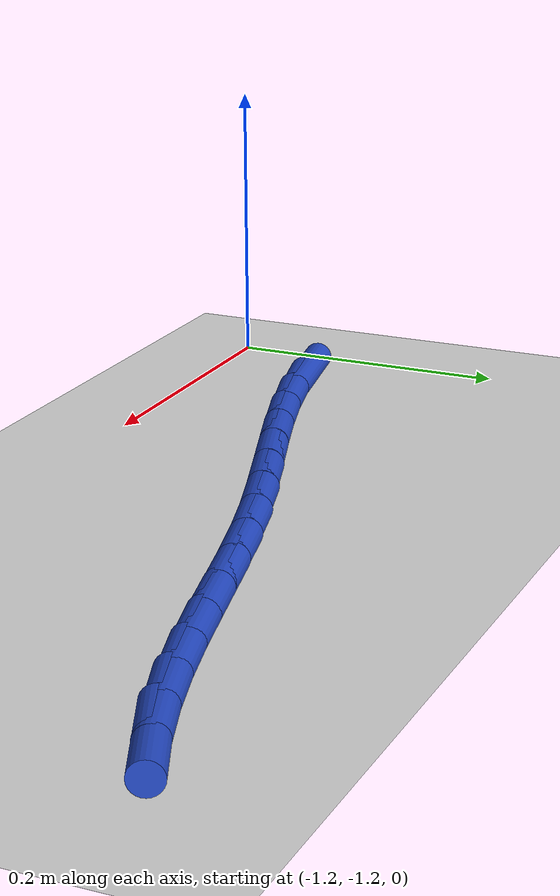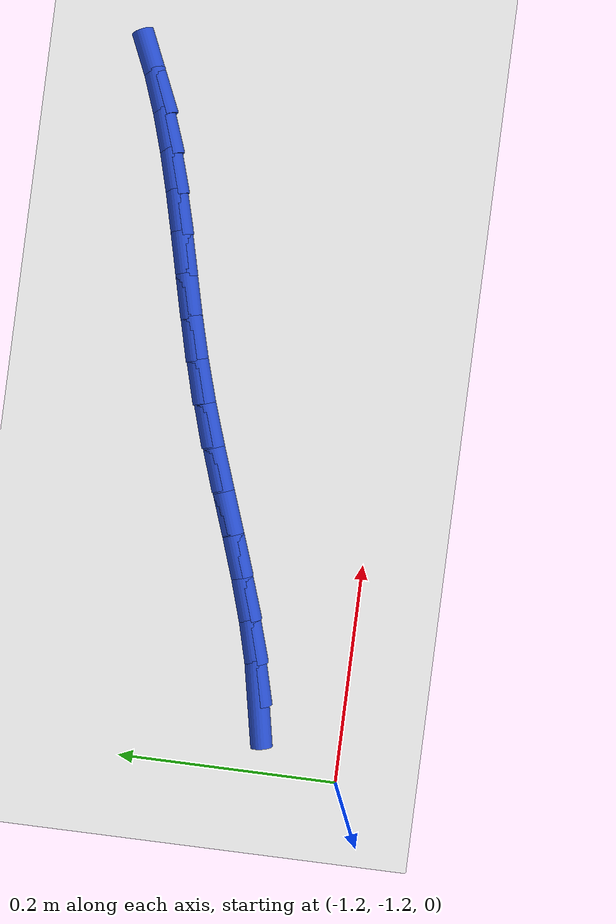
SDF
<sdf version="1.6">
 <world name="default">
  <model name="ground_plane">
   <static>1</static>
   <link name="link">
    <collision name="collision">
     <geometry><plane><normal>0 0 1</normal><size>100 100</size></plane></geometry>
     <surface><friction><ode><mu>100</mu><mu2>50</mu2></ode></friction></surface>
    </collision>
    <visual name="visual">
     <cast_shadows>0</cast_shadows>
     <geometry><plane><normal>0 0 1</normal><size>100 100</size></plane></geometry>
     <material>
      <script><uri>file://media/materials/scripts/gazebo.material</uri><name>Gazebo/WhiteGlow</name></script>
     </material>
    </visual>
   </link>
  </model>
  <model name="line">
   <link name="link_134">
    <pose>-1.1348044352318662 -1.1205781811077162 0.01 0 1.57 0.19714393108619122</pose>
    <collision name="collision">
     <geometry><cylinder><radius>0.01</radius><length>0.08</length></cylinder></geometry>
    </collision>
    <visual name="visual">
     <material>
      <script><name>Gazebo/Blue</name><uri>file://media/materials/scripts/gazebo.material</uri></script>
     </material>
     <geometry><cylinder><radius>0.01</radius><length>0.08</length></cylinder></geometry>
    </visual>
   </link>
   <link name="link_135">
    <pose>-1.0984696942742427 -1.1133207410184738 0.01 0 1.57 0.2610456912687996</pose>
    <collision name="collision">
     <geometry><cylinder><radius>0.01</radius><length>0.08</length></cylinder></geometry>
    </collision>
    <visual name="visual">
     <material>
      <script><name>Gazebo/Blue</name><uri>file://media/materials/scripts/gazebo.material</uri></script>
     </material>
     <geometry><cylinder><radius>0.01</radius><length>0.08</length></cylinder></geometry>
    </visual>
   </link>
   <link name="link_136">
    <pose>-1.061452512426125 -1.1034319138355297 0.01 0 1.57 0.3056574299178483</pose>
    <collision name="collision">
     <geometry><cylinder><radius>0.01</radius><length>0.08</length></cylinder></geometry>
    </collision>
    <visual name="visual">
     <material>
      <script><name>Gazebo/Blue</name><uri>file://media/materials/scripts/gazebo.material</uri></script>
     </material>
     <geometry><cylinder><radius>0.01</radius><length>0.08</length></cylinder></geometry>
    </visual>
   </link>
   <link name="link_137">
    <pose>-1.0238946441052819 -1.0915806799797851 0.01 0 1.57 0.33337998904044014</pose>
    <collision name="collision">
     <geometry><cylinder><radius>0.01</radius><length>0.08</length></cylinder></geometry>
    </collision>
    <visual name="visual">
     <material>
      <script><name>Gazebo/Blue</name><uri>file://media/materials/scripts/gazebo.material</uri></script>
     </material>
     <geometry><cylinder><radius>0.01</radius><length>0.08</length></cylinder></geometry>
    </visual>
   </link>
   <link name="link_138">
    <pose>-0.9859378437294846 -1.0784360198721428 0.01 0 1.57 0.345835256611455</pose>
    <collision name="collision">
     <geometry><cylinder><radius>0.01</radius><length>0.08</length></cylinder></geometry>
    </collision>
    <visual name="visual">
     <material>
      <script><name>Gazebo/Blue</name><uri>file://media/materials/scripts/gazebo.material</uri></script>
     </material>
     <geometry><cylinder><radius>0.01</radius><length>0.08</length></cylinder></geometry>
    </visual>
   </link>
   <link name="link_139">
    <pose>-0.9477238657165028 -1.0646669139335057 0.01 0 1.57 0.34384509755880766</pose>
    <collision name="collision">
     <geometry><cylinder><radius>0.01</radius><length>0.08</length></cylinder></geometry>
    </collision>
    <visual name="visual">
     <material>
      <script><name>Gazebo/Blue</name><uri>file://media/materials/scripts/gazebo.material</uri></script>
     </material>
     <geometry><cylinder><radius>0.01</radius><length>0.08</length></cylinder></geometry>
    </visual>
   </link>
   <link name="link_140">
    <pose>-0.9093944644841053 -1.050942342584774 0.01 0 1.57 0.3274579459815242</pose>
    <collision name="collision">
     <geometry><cylinder><radius>0.01</radius><length>0.08</length></cylinder></geometry>
    </collision>
    <visual name="visual">
     <material>
      <script><name>Gazebo/Blue</name><uri>file://media/materials/scripts/gazebo.material</uri></script>
     </material>
     <geometry><cylinder><radius>0.01</radius><length>0.08</length></cylinder></geometry>
    </visual>
   </link>
   <link name="link_141">
    <pose>-0.8710913944500627 -1.0379312862468513 0.01 0 1.57 0.29688419616929085</pose>
    <collision name="collision">
     <geometry><cylinder><radius>0.01</radius><length>0.08</length></cylinder></geometry>
    </collision>
    <visual name="visual">
     <material>
      <script><name>Gazebo/Blue</name><uri>file://media/materials/scripts/gazebo.material</uri></script>
     </material>
     <geometry><cylinder><radius>0.01</radius><length>0.08</length></cylinder></geometry>
    </visual>
   </link>
   <link name="link_142">
    <pose>-0.8329550647517452 -1.0262644076872431 0.01 0 1.57 0.2659004148412596</pose>
    <collision name="collision">
     <geometry><cylinder><radius>0.01</radius><length>0.08</length></cylinder></geometry>
    </collision>
    <visual name="visual">
     <material>
      <script><name>Gazebo/Blue</name><uri>file://media/materials/scripts/gazebo.material</uri></script>
     </material>
     <geometry><cylinder><radius>0.01</radius><length>0.08</length></cylinder></geometry>
    </visual>
   </link>
   <link name="link_143">
    <pose>-0.7951042359455556 -1.015955752629876 0.01 0 1.57 0.24669126161779767</pose>
    <collision name="collision">
     <geometry><cylinder><radius>0.01</radius><length>0.08</length></cylinder></geometry>
    </collision>
    <visual name="visual">
     <material>
      <script><name>Gazebo/Blue</name><uri>file://media/materials/scripts/gazebo.material</uri></script>
     </material>
     <geometry><cylinder><radius>0.01</radius><length>0.08</length></cylinder></geometry>
    </visual>
   </link>
   <link name="link_144">
    <pose>-0.7576401906088177 -1.0065215411074024 0.01 0 1.57 0.24022973102374</pose>
    <collision name="collision">
     <geometry><cylinder><radius>0.01</radius><length>0.08</length></cylinder></geometry>
    </collision>
    <visual name="visual">
     <material>
      <script><name>Gazebo/Blue</name><uri>file://media/materials/scripts/gazebo.material</uri></script>
     </material>
     <geometry><cylinder><radius>0.01</radius><length>0.08</length></cylinder></geometry>
    </visual>
   </link>
   <link name="link_145">
    <pose>-0.7206637121515478 -0.9974637753582367 0.01 0 1.57 0.24710584203166133</pose>
    <collision name="collision">
     <geometry><cylinder><radius>0.01</radius><length>0.08</length></cylinder></geometry>
    </collision>
    <visual name="visual">
     <material>
      <script><name>Gazebo/Blue</name><uri>file://media/materials/scripts/gazebo.material</uri></script>
     </material>
     <geometry><cylinder><radius>0.01</radius><length>0.08</length></cylinder></geometry>
    </visual>
   </link>
   <link name="link_146">
    <pose>-0.684275583983762 -0.9882844576207925 0.01 0 1.57 0.2678881116816776</pose>
    <collision name="collision">
     <geometry><cylinder><radius>0.01</radius><length>0.08</length></cylinder></geometry>
    </collision>
    <visual name="visual">
     <material>
      <script><name>Gazebo/Blue</name><uri>file://media/materials/scripts/gazebo.material</uri></script>
     </material>
     <geometry><cylinder><radius>0.01</radius><length>0.08</length></cylinder></geometry>
    </visual>
   </link>
   <link name="link_147">
    <pose>-0.6485765895154764 -0.9784855901334832 0.01 0 1.57 0.30307610628341314</pose>
    <collision name="collision">
     <geometry><cylinder><radius>0.01</radius><length>0.08</length></cylinder></geometry>
    </collision>
    <visual name="visual">
     <material>
      <script><name>Gazebo/Blue</name><uri>file://media/materials/scripts/gazebo.material</uri></script>
     </material>
     <geometry><cylinder><radius>0.01</radius><length>0.08</length></cylinder></geometry>
    </visual>
   </link>
   <link name="link_148">
    <pose>-0.613667512156706 -0.9675691751347222 0.01 0 1.57 0.35296124533844464</pose>
    <collision name="collision">
     <geometry><cylinder><radius>0.01</radius><length>0.08</length></cylinder></geometry>
    </collision>
    <visual name="visual">
     <material>
      <script><name>Gazebo/Blue</name><uri>file://media/materials/scripts/gazebo.material</uri></script>
     </material>
     <geometry><cylinder><radius>0.01</radius><length>0.08</length></cylinder></geometry>
    </visual>
   </link>
   <link name="link_149">
    <pose>-0.5796491353174693 -0.9550372148629244 0.01 0 1.57 0.41738642595372816</pose>
    <collision name="collision">
     <geometry><cylinder><radius>0.01</radius><length>0.08</length></cylinder></geometry>
    </collision>
    <visual name="visual">
     <material>
      <script><name>Gazebo/Blue</name><uri>file://media/materials/scripts/gazebo.material</uri></script>
     </material>
     <geometry><cylinder><radius>0.01</radius><length>0.08</length></cylinder></geometry>
    </visual>
   </link>
  </model>
 </world>
</sdf>
